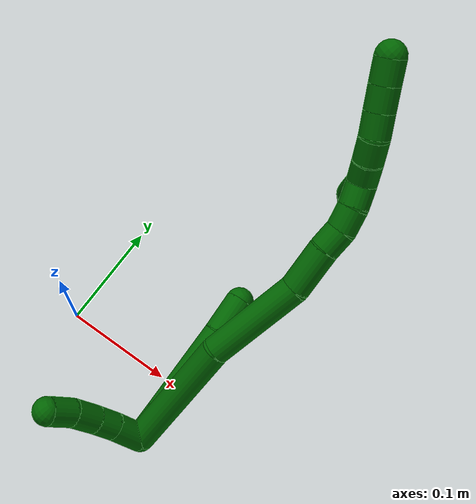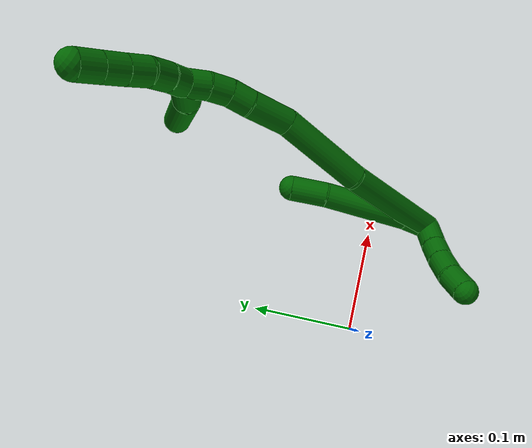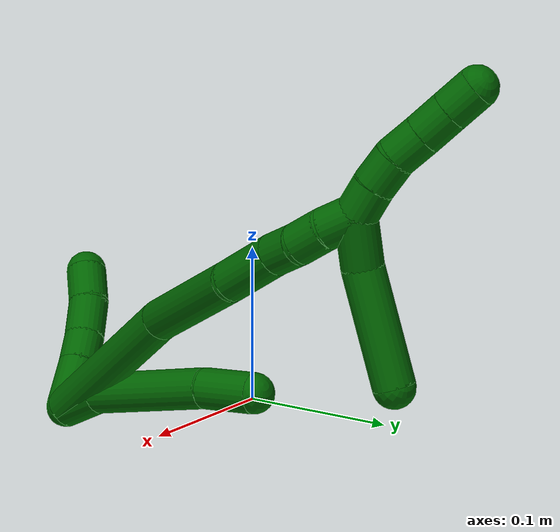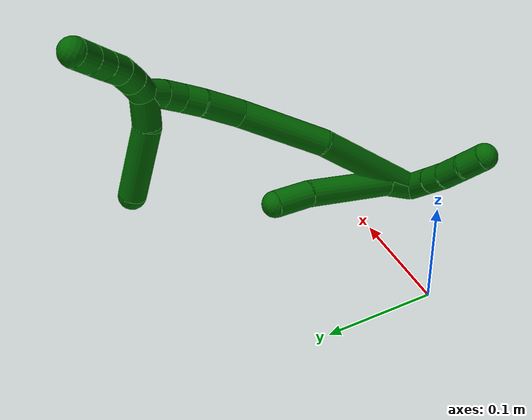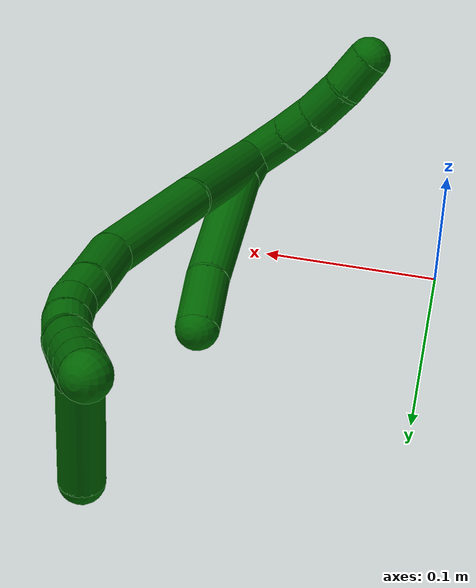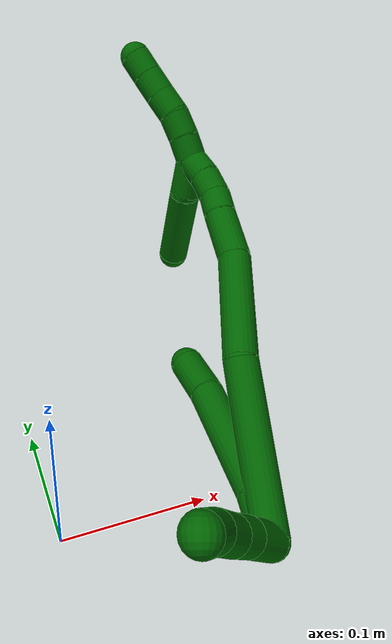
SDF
<sdf version="1.7">
 <world name="default">
  <model name="6">
   <static>0</static>
   <link name="6">
    <collision name="collision-cylinder-e_1_2_8">
     <pose>-0.001597 0.00408 0.014729 -0.270236 -0.104128 0.014168</pose>
     <geometry><cylinder><radius>0.0125</radius><length>0.030733</length></cylinder></geometry>
     <surface>
      <friction><ode><mu>1.16</mu><mu2>1.16</mu2><slip1>0</slip1><slip2>0</slip2></ode></friction>
      <contact><ode><kp>1e+06</kp><kd>1</kd><max_vel>0</max_vel><min_depth>0.001</min_depth></ode></contact>
     </surface>
    </collision>
    <visual name="visual-cylinder-e_1_2_8">
     <pose>-0.001597 0.00408 0.014729 -0.270236 -0.104128 0.014168</pose>
     <geometry><cylinder><radius>0.0125</radius><length>0.030733</length></cylinder></geometry>
     <material><ambient>0 0.392157 0.003922 1</ambient></material>
    </visual>
    <collision name="collision-cylinder-e_2_8_9">
     <pose>-0.004936 0.029354 0.065746 -0.528594 -0.04141 0.011208</pose>
     <geometry><cylinder><radius>0.0125</radius><length>0.08412</length></cylinder></geometry>
     <surface>
      <friction><ode><mu>1.16</mu><mu2>1.16</mu2><slip1>0</slip1><slip2>0</slip2></ode></friction>
      <contact><ode><kp>1e+06</kp><kd>1</kd><max_vel>0</max_vel><min_depth>0.001</min_depth></ode></contact>
     </surface>
    </collision>
    <visual name="visual-cylinder-e_2_8_9">
     <pose>-0.004936 0.029354 0.065746 -0.528594 -0.04141 0.011208</pose>
     <geometry><cylinder><radius>0.0125</radius><length>0.08412</length></cylinder></geometry>
     <material><ambient>0 0.392157 0.003922 1</ambient></material>
    </visual>
    <collision name="collision-cylinder-e_3_9_6">
     <pose>-0.007247 0.061565 0.115713 -0.6781 -0.032476 0.011454</pose>
     <geometry><cylinder><radius>0.0125</radius><length>0.035146</length></cylinder></geometry>
     <surface>
      <friction><ode><mu>1.16</mu><mu2>1.16</mu2><slip1>0</slip1><slip2>0</slip2></ode></friction>
      <contact><ode><kp>1e+06</kp><kd>1</kd><max_vel>0</max_vel><min_depth>0.001</min_depth></ode></contact>
     </surface>
    </collision>
    <visual name="visual-cylinder-e_3_9_6">
     <pose>-0.007247 0.061565 0.115713 -0.6781 -0.032476 0.011454</pose>
     <geometry><cylinder><radius>0.0125</radius><length>0.035146</length></cylinder></geometry>
     <material><ambient>0 0.392157 0.003922 1</ambient></material>
    </visual>
    <collision name="collision-cylinder-e_1_2_10">
     <pose>-0.014221 -0.005754 0.000772 1.43745 -1.18322 -1.06277</pose>
     <geometry><cylinder><radius>0.0125</radius><length>0.03072</length></cylinder></geometry>
     <surface>
      <friction><ode><mu>1.16</mu><mu2>1.16</mu2><slip1>0</slip1><slip2>0</slip2></ode></friction>
      <contact><ode><kp>1e+06</kp><kd>1</kd><max_vel>0</max_vel><min_depth>0.001</min_depth></ode></contact>
     </surface>
    </collision>
    <visual name="visual-cylinder-e_1_2_10">
     <pose>-0.014221 -0.005754 0.000772 1.43745 -1.18322 -1.06277</pose>
     <geometry><cylinder><radius>0.0125</radius><length>0.03072</length></cylinder></geometry>
     <material><ambient>0 0.392157 0.003922 1</ambient></material>
    </visual>
    <collision name="collision-cylinder-e_2_10_11">
     <pose>-0.037688 -0.015658 0.001569 1.5647 -1.14891 -1.14336</pose>
     <geometry><cylinder><radius>0.0125</radius><length>0.020271</length></cylinder></geometry>
     <surface>
      <friction><ode><mu>1.16</mu><mu2>1.16</mu2><slip1>0</slip1><slip2>0</slip2></ode></friction>
      <contact><ode><kp>1e+06</kp><kd>1</kd><max_vel>0</max_vel><min_depth>0.001</min_depth></ode></contact>
     </surface>
    </collision>
    <visual name="visual-cylinder-e_2_10_11">
     <pose>-0.037688 -0.015658 0.001569 1.5647 -1.14891 -1.14336</pose>
     <geometry><cylinder><radius>0.0125</radius><length>0.020271</length></cylinder></geometry>
     <material><ambient>0 0.392157 0.003922 1</ambient></material>
    </visual>
    <collision name="collision-cylinder-e_3_11_12">
     <pose>-0.057813 -0.026001 0.002073 1.49365 -1.05195 -0.986208</pose>
     <geometry><cylinder><radius>0.0125</radius><length>0.025054</length></cylinder></geometry>
     <surface>
      <friction><ode><mu>1.16</mu><mu2>1.16</mu2><slip1>0</slip1><slip2>0</slip2></ode></friction>
      <contact><ode><kp>1e+06</kp><kd>1</kd><max_vel>0</max_vel><min_depth>0.001</min_depth></ode></contact>
     </surface>
    </collision>
    <visual name="visual-cylinder-e_3_11_12">
     <pose>-0.057813 -0.026001 0.002073 1.49365 -1.05195 -0.986208</pose>
     <geometry><cylinder><radius>0.0125</radius><length>0.025054</length></cylinder></geometry>
     <material><ambient>0 0.392157 0.003922 1</ambient></material>
    </visual>
    <collision name="collision-cylinder-e_4_12_5">
     <pose>-0.078212 -0.039362 0.001353 1.73648 -0.918843 -1.05763</pose>
     <geometry><cylinder><radius>0.0125</radius><length>0.023955</length></cylinder></geometry>
     <surface>
      <friction><ode><mu>1.16</mu><mu2>1.16</mu2><slip1>0</slip1><slip2>0</slip2></ode></friction>
      <contact><ode><kp>1e+06</kp><kd>1</kd><max_vel>0</max_vel><min_depth>0.001</min_depth></ode></contact>
     </surface>
    </collision>
    <visual name="visual-cylinder-e_4_12_5">
     <pose>-0.078212 -0.039362 0.001353 1.73648 -0.918843 -1.05763</pose>
     <geometry><cylinder><radius>0.0125</radius><length>0.023955</length></cylinder></geometry>
     <material><ambient>0 0.392157 0.003922 1</ambient></material>
    </visual>
    <collision name="collision-cylinder-e_1_2_13">
     <pose>-0.006453 0.001628 0.057176 -0.028461 -0.112344 0.0016</pose>
     <geometry><cylinder><radius>0.0125</radius><length>0.115124</length></cylinder></geometry>
     <surface>
      <friction><ode><mu>1.16</mu><mu2>1.16</mu2><slip1>0</slip1><slip2>0</slip2></ode></friction>
      <contact><ode><kp>1e+06</kp><kd>1</kd><max_vel>0</max_vel><min_depth>0.001</min_depth></ode></contact>
     </surface>
    </collision>
    <visual name="visual-cylinder-e_1_2_13">
     <pose>-0.006453 0.001628 0.057176 -0.028461 -0.112344 0.0016</pose>
     <geometry><cylinder><radius>0.0125</radius><length>0.115124</length></cylinder></geometry>
     <material><ambient>0 0.392157 0.003922 1</ambient></material>
    </visual>
    <collision name="collision-cylinder-e_2_13_14">
     <pose>-0.008243 0.008876 0.15623 -0.133415 0.109919 -0.007351</pose>
     <geometry><cylinder><radius>0.0125</radius><length>0.085019</length></cylinder></geometry>
     <surface>
      <friction><ode><mu>1.16</mu><mu2>1.16</mu2><slip1>0</slip1><slip2>0</slip2></ode></friction>
      <contact><ode><kp>1e+06</kp><kd>1</kd><max_vel>0</max_vel><min_depth>0.001</min_depth></ode></contact>
     </surface>
    </collision>
    <visual name="visual-cylinder-e_2_13_14">
     <pose>-0.008243 0.008876 0.15623 -0.133415 0.109919 -0.007351</pose>
     <geometry><cylinder><radius>0.0125</radius><length>0.085019</length></cylinder></geometry>
     <material><ambient>0 0.392157 0.003922 1</ambient></material>
    </visual>
    <collision name="collision-cylinder-e_3_14_15">
     <pose>-0.006405 0.018106 0.217314 -0.185752 -0.143549 0.013394</pose>
     <geometry><cylinder><radius>0.0125</radius><length>0.039492</length></cylinder></geometry>
     <surface>
      <friction><ode><mu>1.16</mu><mu2>1.16</mu2><slip1>0</slip1><slip2>0</slip2></ode></friction>
      <contact><ode><kp>1e+06</kp><kd>1</kd><max_vel>0</max_vel><min_depth>0.001</min_depth></ode></contact>
     </surface>
    </collision>
    <visual name="visual-cylinder-e_3_14_15">
     <pose>-0.006405 0.018106 0.217314 -0.185752 -0.143549 0.013394</pose>
     <geometry><cylinder><radius>0.0125</radius><length>0.039492</length></cylinder></geometry>
     <material><ambient>0 0.392157 0.003922 1</ambient></material>
    </visual>
    <collision name="collision-cylinder-e_4_15_16">
     <pose>-0.00953 0.024093 0.246254 -0.239602 -0.029941 0.003604</pose>
     <geometry><cylinder><radius>0.0125</radius><length>0.020047</length></cylinder></geometry>
     <surface>
      <friction><ode><mu>1.16</mu><mu2>1.16</mu2><slip1>0</slip1><slip2>0</slip2></ode></friction>
      <contact><ode><kp>1e+06</kp><kd>1</kd><max_vel>0</max_vel><min_depth>0.001</min_depth></ode></contact>
     </surface>
    </collision>
    <visual name="visual-cylinder-e_4_15_16">
     <pose>-0.00953 0.024093 0.246254 -0.239602 -0.029941 0.003604</pose>
     <geometry><cylinder><radius>0.0125</radius><length>0.020047</length></cylinder></geometry>
     <material><ambient>0 0.392157 0.003922 1</ambient></material>
    </visual>
    <collision name="collision-cylinder-e_5_16_17">
     <pose>-0.01271 0.028852 0.265371 -0.248519 -0.289116 0.036361</pose>
     <geometry><cylinder><radius>0.0125</radius><length>0.020203</length></cylinder></geometry>
     <surface>
      <friction><ode><mu>1.16</mu><mu2>1.16</mu2><slip1>0</slip1><slip2>0</slip2></ode></friction>
      <contact><ode><kp>1e+06</kp><kd>1</kd><max_vel>0</max_vel><min_depth>0.001</min_depth></ode></contact>
     </surface>
    </collision>
    <visual name="visual-cylinder-e_5_16_17">
     <pose>-0.01271 0.028852 0.265371 -0.248519 -0.289116 0.036361</pose>
     <geometry><cylinder><radius>0.0125</radius><length>0.020203</length></cylinder></geometry>
     <material><ambient>0 0.392157 0.003922 1</ambient></material>
    </visual>
    <collision name="collision-cylinder-e_6_17_1">
     <pose>-0.019488 0.034726 0.283344 -0.386226 -0.398088 0.07885</pose>
     <geometry><cylinder><radius>0.0125</radius><length>0.020115</length></cylinder></geometry>
     <surface>
      <friction><ode><mu>1.16</mu><mu2>1.16</mu2><slip1>0</slip1><slip2>0</slip2></ode></friction>
      <contact><ode><kp>1e+06</kp><kd>1</kd><max_vel>0</max_vel><min_depth>0.001</min_depth></ode></contact>
     </surface>
    </collision>
    <visual name="visual-cylinder-e_6_17_1">
     <pose>-0.019488 0.034726 0.283344 -0.386226 -0.398088 0.07885</pose>
     <geometry><cylinder><radius>0.0125</radius><length>0.020115</length></cylinder></geometry>
     <material><ambient>0 0.392157 0.003922 1</ambient></material>
    </visual>
    <collision name="collision-cylinder-e_1_1_18">
     <pose>-0.019024 0.049599 0.282759 -2.24915 0.290078 -0.592654</pose>
     <geometry><cylinder><radius>0.0125</radius><length>0.03051</length></cylinder></geometry>
     <surface>
      <friction><ode><mu>1.16</mu><mu2>1.16</mu2><slip1>0</slip1><slip2>0</slip2></ode></friction>
      <contact><ode><kp>1e+06</kp><kd>1</kd><max_vel>0</max_vel><min_depth>0.001</min_depth></ode></contact>
     </surface>
    </collision>
    <visual name="visual-cylinder-e_1_1_18">
     <pose>-0.019024 0.049599 0.282759 -2.24915 0.290078 -0.592654</pose>
     <geometry><cylinder><radius>0.0125</radius><length>0.03051</length></cylinder></geometry>
     <material><ambient>0 0.392157 0.003922 1</ambient></material>
    </visual>
    <collision name="collision-cylinder-e_2_18_4">
     <pose>-0.00073 0.090208 0.260978 -1.97806 0.412528 -0.616029</pose>
     <geometry><cylinder><radius>0.0125</radius><length>0.06949</length></cylinder></geometry>
     <surface>
      <friction><ode><mu>1.16</mu><mu2>1.16</mu2><slip1>0</slip1><slip2>0</slip2></ode></friction>
      <contact><ode><kp>1e+06</kp><kd>1</kd><max_vel>0</max_vel><min_depth>0.001</min_depth></ode></contact>
     </surface>
    </collision>
    <visual name="visual-cylinder-e_2_18_4">
     <pose>-0.00073 0.090208 0.260978 -1.97806 0.412528 -0.616029</pose>
     <geometry><cylinder><radius>0.0125</radius><length>0.06949</length></cylinder></geometry>
     <material><ambient>0 0.392157 0.003922 1</ambient></material>
    </visual>
    <collision name="collision-cylinder-e_1_1_19">
     <pose>-0.028626 0.036121 0.300188 0.248702 -0.551387 -0.070692</pose>
     <geometry><cylinder><radius>0.0125</radius><length>0.02</length></cylinder></geometry>
     <surface>
      <friction><ode><mu>1.16</mu><mu2>1.16</mu2><slip1>0</slip1><slip2>0</slip2></ode></friction>
      <contact><ode><kp>1e+06</kp><kd>1</kd><max_vel>0</max_vel><min_depth>0.001</min_depth></ode></contact>
     </surface>
    </collision>
    <visual name="visual-cylinder-e_1_1_19">
     <pose>-0.028626 0.036121 0.300188 0.248702 -0.551387 -0.070692</pose>
     <geometry><cylinder><radius>0.0125</radius><length>0.02</length></cylinder></geometry>
     <material><ambient>0 0.392157 0.003922 1</ambient></material>
    </visual>
    <collision name="collision-cylinder-e_2_19_20">
     <pose>-0.039265 0.032933 0.316789 0.130046 -0.57051 -0.038186</pose>
     <geometry><cylinder><radius>0.0125</radius><length>0.02</length></cylinder></geometry>
     <surface>
      <friction><ode><mu>1.16</mu><mu2>1.16</mu2><slip1>0</slip1><slip2>0</slip2></ode></friction>
      <contact><ode><kp>1e+06</kp><kd>1</kd><max_vel>0</max_vel><min_depth>0.001</min_depth></ode></contact>
     </surface>
    </collision>
    <visual name="visual-cylinder-e_2_19_20">
     <pose>-0.039265 0.032933 0.316789 0.130046 -0.57051 -0.038186</pose>
     <geometry><cylinder><radius>0.0125</radius><length>0.02</length></cylinder></geometry>
     <material><ambient>0 0.392157 0.003922 1</ambient></material>
    </visual>
    <collision name="collision-cylinder-e_3_20_21">
     <pose>-0.050391 0.033028 0.333247 -0.145234 -0.609578 0.045762</pose>
     <geometry><cylinder><radius>0.0125</radius><length>0.02</length></cylinder></geometry>
     <surface>
      <friction><ode><mu>1.16</mu><mu2>1.16</mu2><slip1>0</slip1><slip2>0</slip2></ode></friction>
      <contact><ode><kp>1e+06</kp><kd>1</kd><max_vel>0</max_vel><min_depth>0.001</min_depth></ode></contact>
     </surface>
    </collision>
    <visual name="visual-cylinder-e_3_20_21">
     <pose>-0.050391 0.033028 0.333247 -0.145234 -0.609578 0.045762</pose>
     <geometry><cylinder><radius>0.0125</radius><length>0.02</length></cylinder></geometry>
     <material><ambient>0 0.392157 0.003922 1</ambient></material>
    </visual>
    <collision name="collision-cylinder-e_4_21_22">
     <pose>-0.061804 0.035163 0.349529 -0.115463 -0.605022 0.036071</pose>
     <geometry><cylinder><radius>0.0125</radius><length>0.02</length></cylinder></geometry>
     <surface>
      <friction><ode><mu>1.16</mu><mu2>1.16</mu2><slip1>0</slip1><slip2>0</slip2></ode></friction>
      <contact><ode><kp>1e+06</kp><kd>1</kd><max_vel>0</max_vel><min_depth>0.001</min_depth></ode></contact>
     </surface>
    </collision>
    <visual name="visual-cylinder-e_4_21_22">
     <pose>-0.061804 0.035163 0.349529 -0.115463 -0.605022 0.036071</pose>
     <geometry><cylinder><radius>0.0125</radius><length>0.02</length></cylinder></geometry>
     <material><ambient>0 0.392157 0.003922 1</ambient></material>
    </visual>
    <collision name="collision-cylinder-e_5_22_3">
     <pose>-0.073112 0.037074 0.365914 -0.116829 -0.596823 0.035973</pose>
     <geometry><cylinder><radius>0.0125</radius><length>0.02</length></cylinder></geometry>
     <surface>
      <friction><ode><mu>1.16</mu><mu2>1.16</mu2><slip1>0</slip1><slip2>0</slip2></ode></friction>
      <contact><ode><kp>1e+06</kp><kd>1</kd><max_vel>0</max_vel><min_depth>0.001</min_depth></ode></contact>
     </surface>
    </collision>
    <visual name="visual-cylinder-e_5_22_3">
     <pose>-0.073112 0.037074 0.365914 -0.116829 -0.596823 0.035973</pose>
     <geometry><cylinder><radius>0.0125</radius><length>0.02</length></cylinder></geometry>
     <material><ambient>0 0.392157 0.003922 1</ambient></material>
    </visual>
    <collision name="collision-sphere-3">
     <pose>-0.078732 0.038038 0.374129 0 -0 0</pose>
     <geometry><sphere><radius>0.0125</radius></sphere></geometry>
     <surface>
      <friction><ode><mu>1.16</mu><mu2>1.16</mu2><slip1>0</slip1><slip2>0</slip2></ode></friction>
      <contact><ode><kp>1e+06</kp><kd>1</kd><max_vel>0</max_vel><min_depth>0.001</min_depth></ode></contact>
     </surface>
    </collision>
    <visual name="visual-sphere-3">
     <pose>-0.078732 0.038038 0.374129 0 -0 0</pose>
     <geometry><sphere><radius>0.0125</radius></sphere></geometry>
     <material><ambient>0 0.392157 0.003922 1</ambient></material>
    </visual>
    <collision name="collision-sphere-22">
     <pose>-0.067492 0.03611 0.357699 0 -0 0</pose>
     <geometry><sphere><radius>0.0125</radius></sphere></geometry>
     <surface>
      <friction><ode><mu>1.16</mu><mu2>1.16</mu2><slip1>0</slip1><slip2>0</slip2></ode></friction>
      <contact><ode><kp>1e+06</kp><kd>1</kd><max_vel>0</max_vel><min_depth>0.001</min_depth></ode></contact>
     </surface>
    </collision>
    <visual name="visual-sphere-22">
     <pose>-0.067492 0.03611 0.357699 0 -0 0</pose>
     <geometry><sphere><radius>0.0125</radius></sphere></geometry>
     <material><ambient>0 0.392157 0.003922 1</ambient></material>
    </visual>
    <collision name="collision-sphere-21">
     <pose>-0.056116 0.034215 0.341359 0 -0 0</pose>
     <geometry><sphere><radius>0.0125</radius></sphere></geometry>
     <surface>
      <friction><ode><mu>1.16</mu><mu2>1.16</mu2><slip1>0</slip1><slip2>0</slip2></ode></friction>
      <contact><ode><kp>1e+06</kp><kd>1</kd><max_vel>0</max_vel><min_depth>0.001</min_depth></ode></contact>
     </surface>
    </collision>
    <visual name="visual-sphere-21">
     <pose>-0.056116 0.034215 0.341359 0 -0 0</pose>
     <geometry><sphere><radius>0.0125</radius></sphere></geometry>
     <material><ambient>0 0.392157 0.003922 1</ambient></material>
    </visual>
    <collision name="collision-sphere-20">
     <pose>-0.044666 0.031842 0.325134 0 -0 0</pose>
     <geometry><sphere><radius>0.0125</radius></sphere></geometry>
     <surface>
      <friction><ode><mu>1.16</mu><mu2>1.16</mu2><slip1>0</slip1><slip2>0</slip2></ode></friction>
      <contact><ode><kp>1e+06</kp><kd>1</kd><max_vel>0</max_vel><min_depth>0.001</min_depth></ode></contact>
     </surface>
    </collision>
    <visual name="visual-sphere-20">
     <pose>-0.044666 0.031842 0.325134 0 -0 0</pose>
     <geometry><sphere><radius>0.0125</radius></sphere></geometry>
     <material><ambient>0 0.392157 0.003922 1</ambient></material>
    </visual>
    <collision name="collision-sphere-19">
     <pose>-0.033865 0.034025 0.308444 0 -0 0</pose>
     <geometry><sphere><radius>0.0125</radius></sphere></geometry>
     <surface>
      <friction><ode><mu>1.16</mu><mu2>1.16</mu2><slip1>0</slip1><slip2>0</slip2></ode></friction>
      <contact><ode><kp>1e+06</kp><kd>1</kd><max_vel>0</max_vel><min_depth>0.001</min_depth></ode></contact>
     </surface>
    </collision>
    <visual name="visual-sphere-19">
     <pose>-0.033865 0.034025 0.308444 0 -0 0</pose>
     <geometry><sphere><radius>0.0125</radius></sphere></geometry>
     <material><ambient>0 0.392157 0.003922 1</ambient></material>
    </visual>
    <collision name="collision-sphere-11">
     <pose>-0.046935 -0.019808 0.001594 0 -0 0</pose>
     <geometry><sphere><radius>0.0125</radius></sphere></geometry>
     <surface>
      <friction><ode><mu>1.16</mu><mu2>1.16</mu2><slip1>0</slip1><slip2>0</slip2></ode></friction>
      <contact><ode><kp>1e+06</kp><kd>1</kd><max_vel>0</max_vel><min_depth>0.001</min_depth></ode></contact>
     </surface>
    </collision>
    <visual name="visual-sphere-11">
     <pose>-0.046935 -0.019808 0.001594 0 -0 0</pose>
     <geometry><sphere><radius>0.0125</radius></sphere></geometry>
     <material><ambient>0 0.392157 0.003922 1</ambient></material>
    </visual>
    <collision name="collision-sphere-10">
     <pose>-0.028442 -0.011508 0.001544 0 -0 0</pose>
     <geometry><sphere><radius>0.0125</radius></sphere></geometry>
     <surface>
      <friction><ode><mu>1.16</mu><mu2>1.16</mu2><slip1>0</slip1><slip2>0</slip2></ode></friction>
      <contact><ode><kp>1e+06</kp><kd>1</kd><max_vel>0</max_vel><min_depth>0.001</min_depth></ode></contact>
     </surface>
    </collision>
    <visual name="visual-sphere-10">
     <pose>-0.028442 -0.011508 0.001544 0 -0 0</pose>
     <geometry><sphere><radius>0.0125</radius></sphere></geometry>
     <material><ambient>0 0.392157 0.003922 1</ambient></material>
    </visual>
    <collision name="collision-sphere-6">
     <pose>-0.007818 0.072583 0.129391 0 -0 0</pose>
     <geometry><sphere><radius>0.0125</radius></sphere></geometry>
     <surface>
      <friction><ode><mu>1.16</mu><mu2>1.16</mu2><slip1>0</slip1><slip2>0</slip2></ode></friction>
      <contact><ode><kp>1e+06</kp><kd>1</kd><max_vel>0</max_vel><min_depth>0.001</min_depth></ode></contact>
     </surface>
    </collision>
    <visual name="visual-sphere-6">
     <pose>-0.007818 0.072583 0.129391 0 -0 0</pose>
     <geometry><sphere><radius>0.0125</radius></sphere></geometry>
     <material><ambient>0 0.392157 0.003922 1</ambient></material>
    </visual>
    <collision name="collision-sphere-9">
     <pose>-0.006677 0.050547 0.102035 0 -0 0</pose>
     <geometry><sphere><radius>0.0125</radius></sphere></geometry>
     <surface>
      <friction><ode><mu>1.16</mu><mu2>1.16</mu2><slip1>0</slip1><slip2>0</slip2></ode></friction>
      <contact><ode><kp>1e+06</kp><kd>1</kd><max_vel>0</max_vel><min_depth>0.001</min_depth></ode></contact>
     </surface>
    </collision>
    <visual name="visual-sphere-9">
     <pose>-0.006677 0.050547 0.102035 0 -0 0</pose>
     <geometry><sphere><radius>0.0125</radius></sphere></geometry>
     <material><ambient>0 0.392157 0.003922 1</ambient></material>
    </visual>
    <collision name="collision-sphere-2">
     <geometry><sphere><radius>0.0125</radius></sphere></geometry>
     <surface>
      <friction><ode><mu>1.16</mu><mu2>1.16</mu2><slip1>0</slip1><slip2>0</slip2></ode></friction>
      <contact><ode><kp>1e+06</kp><kd>1</kd><max_vel>0</max_vel><min_depth>0.001</min_depth></ode></contact>
     </surface>
    </collision>
    <visual name="visual-sphere-2">
     <geometry><sphere><radius>0.0125</radius></sphere></geometry>
     <material><ambient>0 0.392157 0.003922 1</ambient></material>
    </visual>
    <collision name="collision-sphere-8">
     <pose>-0.003194 0.00816 0.029458 0 -0 0</pose>
     <geometry><sphere><radius>0.0125</radius></sphere></geometry>
     <surface>
      <friction><ode><mu>1.16</mu><mu2>1.16</mu2><slip1>0</slip1><slip2>0</slip2></ode></friction>
      <contact><ode><kp>1e+06</kp><kd>1</kd><max_vel>0</max_vel><min_depth>0.001</min_depth></ode></contact>
     </surface>
    </collision>
    <visual name="visual-sphere-8">
     <pose>-0.003194 0.00816 0.029458 0 -0 0</pose>
     <geometry><sphere><radius>0.0125</radius></sphere></geometry>
     <material><ambient>0 0.392157 0.003922 1</ambient></material>
    </visual>
    <collision name="collision-sphere-12">
     <pose>-0.068691 -0.032194 0.002552 0 -0 0</pose>
     <geometry><sphere><radius>0.0125</radius></sphere></geometry>
     <surface>
      <friction><ode><mu>1.16</mu><mu2>1.16</mu2><slip1>0</slip1><slip2>0</slip2></ode></friction>
      <contact><ode><kp>1e+06</kp><kd>1</kd><max_vel>0</max_vel><min_depth>0.001</min_depth></ode></contact>
     </surface>
    </collision>
    <visual name="visual-sphere-12">
     <pose>-0.068691 -0.032194 0.002552 0 -0 0</pose>
     <geometry><sphere><radius>0.0125</radius></sphere></geometry>
     <material><ambient>0 0.392157 0.003922 1</ambient></material>
    </visual>
    <collision name="collision-sphere-5">
     <pose>-0.087734 -0.04653 0.000155 0 -0 0</pose>
     <geometry><sphere><radius>0.0125</radius></sphere></geometry>
     <surface>
      <friction><ode><mu>1.16</mu><mu2>1.16</mu2><slip1>0</slip1><slip2>0</slip2></ode></friction>
      <contact><ode><kp>1e+06</kp><kd>1</kd><max_vel>0</max_vel><min_depth>0.001</min_depth></ode></contact>
     </surface>
    </collision>
    <visual name="visual-sphere-5">
     <pose>-0.087734 -0.04653 0.000155 0 -0 0</pose>
     <geometry><sphere><radius>0.0125</radius></sphere></geometry>
     <material><ambient>0 0.392157 0.003922 1</ambient></material>
    </visual>
    <collision name="collision-sphere-13">
     <pose>-0.012906 0.003255 0.114352 0 -0 0</pose>
     <geometry><sphere><radius>0.0125</radius></sphere></geometry>
     <surface>
      <friction><ode><mu>1.16</mu><mu2>1.16</mu2><slip1>0</slip1><slip2>0</slip2></ode></friction>
      <contact><ode><kp>1e+06</kp><kd>1</kd><max_vel>0</max_vel><min_depth>0.001</min_depth></ode></contact>
     </surface>
    </collision>
    <visual name="visual-sphere-13">
     <pose>-0.012906 0.003255 0.114352 0 -0 0</pose>
     <geometry><sphere><radius>0.0125</radius></sphere></geometry>
     <material><ambient>0 0.392157 0.003922 1</ambient></material>
    </visual>
    <collision name="collision-sphere-14">
     <pose>-0.00358 0.014496 0.198107 0 -0 0</pose>
     <geometry><sphere><radius>0.0125</radius></sphere></geometry>
     <surface>
      <friction><ode><mu>1.16</mu><mu2>1.16</mu2><slip1>0</slip1><slip2>0</slip2></ode></friction>
      <contact><ode><kp>1e+06</kp><kd>1</kd><max_vel>0</max_vel><min_depth>0.001</min_depth></ode></contact>
     </surface>
    </collision>
    <visual name="visual-sphere-14">
     <pose>-0.00358 0.014496 0.198107 0 -0 0</pose>
     <geometry><sphere><radius>0.0125</radius></sphere></geometry>
     <material><ambient>0 0.392157 0.003922 1</ambient></material>
    </visual>
    <collision name="collision-sphere-15">
     <pose>-0.00923 0.021715 0.236521 0 -0 0</pose>
     <geometry><sphere><radius>0.0125</radius></sphere></geometry>
     <surface>
      <friction><ode><mu>1.16</mu><mu2>1.16</mu2><slip1>0</slip1><slip2>0</slip2></ode></friction>
      <contact><ode><kp>1e+06</kp><kd>1</kd><max_vel>0</max_vel><min_depth>0.001</min_depth></ode></contact>
     </surface>
    </collision>
    <visual name="visual-sphere-15">
     <pose>-0.00923 0.021715 0.236521 0 -0 0</pose>
     <geometry><sphere><radius>0.0125</radius></sphere></geometry>
     <material><ambient>0 0.392157 0.003922 1</ambient></material>
    </visual>
    <collision name="collision-sphere-16">
     <pose>-0.00983 0.02647 0.255987 0 -0 0</pose>
     <geometry><sphere><radius>0.0125</radius></sphere></geometry>
     <surface>
      <friction><ode><mu>1.16</mu><mu2>1.16</mu2><slip1>0</slip1><slip2>0</slip2></ode></friction>
      <contact><ode><kp>1e+06</kp><kd>1</kd><max_vel>0</max_vel><min_depth>0.001</min_depth></ode></contact>
     </surface>
    </collision>
    <visual name="visual-sphere-16">
     <pose>-0.00983 0.02647 0.255987 0 -0 0</pose>
     <geometry><sphere><radius>0.0125</radius></sphere></geometry>
     <material><ambient>0 0.392157 0.003922 1</ambient></material>
    </visual>
    <collision name="collision-sphere-17">
     <pose>-0.01559 0.031233 0.274756 0 -0 0</pose>
     <geometry><sphere><radius>0.0125</radius></sphere></geometry>
     <surface>
      <friction><ode><mu>1.16</mu><mu2>1.16</mu2><slip1>0</slip1><slip2>0</slip2></ode></friction>
      <contact><ode><kp>1e+06</kp><kd>1</kd><max_vel>0</max_vel><min_depth>0.001</min_depth></ode></contact>
     </surface>
    </collision>
    <visual name="visual-sphere-17">
     <pose>-0.01559 0.031233 0.274756 0 -0 0</pose>
     <geometry><sphere><radius>0.0125</radius></sphere></geometry>
     <material><ambient>0 0.392157 0.003922 1</ambient></material>
    </visual>
    <collision name="collision-sphere-1">
     <pose>-0.023387 0.038218 0.291932 0 -0 0</pose>
     <geometry><sphere><radius>0.0125</radius></sphere></geometry>
     <surface>
      <friction><ode><mu>1.16</mu><mu2>1.16</mu2><slip1>0</slip1><slip2>0</slip2></ode></friction>
      <contact><ode><kp>1e+06</kp><kd>1</kd><max_vel>0</max_vel><min_depth>0.001</min_depth></ode></contact>
     </surface>
    </collision>
    <visual name="visual-sphere-1">
     <pose>-0.023387 0.038218 0.291932 0 -0 0</pose>
     <geometry><sphere><radius>0.0125</radius></sphere></geometry>
     <material><ambient>0 0.392157 0.003922 1</ambient></material>
    </visual>
    <collision name="collision-sphere-18">
     <pose>-0.014661 0.060981 0.273586 0 -0 0</pose>
     <geometry><sphere><radius>0.0125</radius></sphere></geometry>
     <surface>
      <friction><ode><mu>1.16</mu><mu2>1.16</mu2><slip1>0</slip1><slip2>0</slip2></ode></friction>
      <contact><ode><kp>1e+06</kp><kd>1</kd><max_vel>0</max_vel><min_depth>0.001</min_depth></ode></contact>
     </surface>
    </collision>
    <visual name="visual-sphere-18">
     <pose>-0.014661 0.060981 0.273586 0 -0 0</pose>
     <geometry><sphere><radius>0.0125</radius></sphere></geometry>
     <material><ambient>0 0.392157 0.003922 1</ambient></material>
    </visual>
    <collision name="collision-sphere-4">
     <pose>0.0132 0.119435 0.248371 0 -0 0</pose>
     <geometry><sphere><radius>0.0125</radius></sphere></geometry>
     <surface>
      <friction><ode><mu>1.16</mu><mu2>1.16</mu2><slip1>0</slip1><slip2>0</slip2></ode></friction>
      <contact><ode><kp>1e+06</kp><kd>1</kd><max_vel>0</max_vel><min_depth>0.001</min_depth></ode></contact>
     </surface>
    </collision>
    <visual name="visual-sphere-4">
     <pose>0.0132 0.119435 0.248371 0 -0 0</pose>
     <geometry><sphere><radius>0.0125</radius></sphere></geometry>
     <material><ambient>0 0.392157 0.003922 1</ambient></material>
    </visual>
    <inertial>
     <pose>-0.017965 0.023146 0.152947 0 -0 0</pose>
     <mass>0.75</mass>
     <inertia><ixx>0.000259</ixx><ixy>0</ixy><ixz>0</ixz><iyy>0.000249</iyy><iyz>0</iyz><izz>-2e-05</izz></inertia>
    </inertial>
   </link>
   <pose>0.119543 -0.05668 0.014176 -0.829399 0.445501 0.02673</pose>
  </model>
 </world>
</sdf>
